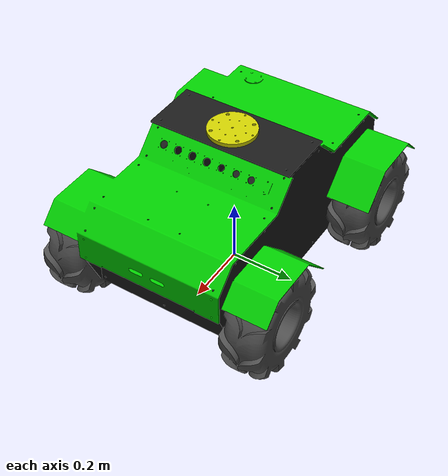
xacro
<?xml version="1.0"?>
<robot name="sleo" xmlns:xacro="http://ros.org/wiki/xacro">

  <xacro:arg name="velodyne_enable" default="false" />
  <xacro:arg name="ur5_enable" default="false" />
  <xacro:arg name="3d_sensor_enable" default="false" />
  <xacro:arg name="laser_enable" default="false" />
  <xacro:include filename="$(find sleo_description)/urdf/sleo_library.urdf.xacro" />

  <sleo/>

  <xacro:if value="$(arg laser_enable)">
    <sick_lms1xx                    parent="base_link"/>
  </xacro:if>

  <xacro:if value="$(arg 3d_sensor_enable)">
    <sensor_d415                    parent="base_link"/>
  </xacro:if>

  <xacro:if value="$(arg velodyne_enable)">
    <xacro:unless value="$(arg ur5_enable)">
      <HDL-32E parent="base_link" name="velodyne2" topic="/velodyne_points" hz="10" samples="220">
        <origin xyz="0.0 0.0 0.403" rpy="0.0 0.0 0.0" />
      </HDL-32E>
    </xacro:unless>
  </xacro:if>

  <xacro:if value="$(arg ur5_enable)">
    <xacro:unless value="$(arg velodyne_enable)">
      <xacro:property name="reflect" value="-1" />

      <!-- Spawn arm -->
      <xacro:ur5_robot prefix="ur5_arm_" joint_limited="true"/>

      <!-- Join arm -->
      <joint name="ur5_arm_base" type="fixed">
        <parent link="base_link" />
        <child link="ur5_arm_base_link" />
        <origin xyz="0.0 0.0 0.403" rpy="0.0 0.0 0.0" />
      </joint>
    </xacro:unless>
  </xacro:if>

</robot>

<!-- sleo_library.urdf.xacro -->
<!--
  The complete sleo library of xacros for easy reference
 -->
<robot xmlns:xacro="http://ros.org/wiki/xacro">
  <!-- General -->
  <xacro:include filename="$(find sleo_description)/urdf/common_properties.urdf.xacro"/>
  <xacro:include filename="$(find sleo_description)/urdf/sleo_properties.urdf.xacro"/>
  <!-- Bases -->
  <xacro:include filename="$(find sleo_description)/urdf/sleo.urdf.xacro" />
  <!-- 2D Laser -->
  <xacro:include filename="$(find sleo_description)/urdf/sensors/sick_lmsxx.urdf.xacro"/>

  <!-- 3D sensor -->
  <xacro:include filename="$(find sleo_description)/urdf/sensors/velodyne.urdf.xacro"/>
  <xacro:include filename="$(find velodyne_description)/urdf/HDL-32E.urdf.xacro"/>
  <xacro:include filename="$(find sleo_description)/urdf/sensors/d415.urdf.xacro"/>

  <!-- Arm -->
  <xacro:include filename="$(find ur_description)/urdf/ur5.urdf.xacro" />

</robot>

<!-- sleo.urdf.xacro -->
<robot name="sleo" xmlns:xacro="http://ros.org/wiki/xacro">
  <xacro:include filename="$(find sleo_description)/urdf/wheel.urdf.xacro" />
  <xacro:include filename="$(find sleo_description)/urdf/common_properties.urdf.xacro"/>
  <xacro:include filename="$(find sleo_description)/urdf/sleo_gazebo.urdf.xacro"/>
  <property name="M_PI" value="3.14159"/>

  <!-- Base Size -->
  <property name="base_x_size" value="0.885" />
  <property name="base_y_size" value="0.618" />
  <property name="base_z_size" value="0.391" />

  <!-- Wheel Mounting Positions -->
  <xacro:property name="wheelbase" value="0.590" />
  <xacro:property name="track" value="0.5936" />
  <xacro:property name="wheel_vertical_offset" value="0.0735" />

  <!-- Wheel Properties -->
  <xacro:property name="wheel_length" value="0.127" />
  <xacro:property name="wheel_radius" value="0.1651" />

  <!--Xacro Macro Panther-->
  <xacro:macro name="sleo">

    <!-- Base link is on the ground under the robot -->
    <link name="base_footprint"/>

    <joint name="chassis_joint" type="fixed">
      <origin xyz="0 0 ${wheel_radius - wheel_vertical_offset}" rpy="0 0 0" />
      <parent link="base_footprint" />
      <child link="base_link" />
    </joint>

    <!-- Chassis link is the center of the robot's bottom plate -->
    <link name="base_link">
      <visual>
        <origin xyz="0 0 0" rpy="0 0 0" />
        <geometry>
	      <mesh filename="package://sleo_description/meshes/chassis.stl"/>
        </geometry>
       <xacro:insert_block name="sleo_black" />
      </visual>
      <collision>
        <origin xyz="0 0 0" rpy="0 0 0" />
        <geometry>
	      <mesh filename="package://sleo_description/meshes/chassis.stl"/>
        </geometry>
      </collision>
    </link>
    <gazebo reference="base_link">
    </gazebo>

   <!-- Bonnet link is above of the robot's chassis -->
   <link name="bonnet_link">
      <visual>
        <origin xyz="0 0 0" rpy="0 0 0" />
        <geometry>
	      <mesh filename="package://sleo_description/meshes/bonnet.stl"/>
        </geometry>
       <xacro:insert_block name="sleo_green" />
      </visual>
      <collision>
        <origin xyz="0 0 0" rpy="0 0 0" />
        <geometry>
	      <mesh filename="package://sleo_description/meshes/bonnet.stl"/>
        </geometry>
      </collision>
    </link>
    <joint name="bonnet_joint" type="fixed">
      <origin xyz="0 0 0.1384" rpy="0 0 0" />
      <parent link="base_link" />
      <child link="bonnet_link" />
    </joint>

   <!-- Axle link is scatter arround the chassis -->
   <link name="axle_link">
      <visual>
        <origin xyz="0 0 0" rpy="0 0 0" />
        <geometry>
	      <mesh filename="package://sleo_description/meshes/axle.stl"/>
        </geometry>
       <xacro:insert_block name="sleo_yellow" />
      </visual>
      <collision>
        <origin xyz="0 0 0" rpy="0 0 0" />
        <geometry>
	      <mesh filename="package://sleo_description/meshes/axle.stl"/>
        </geometry>
      </collision>
    </link>
    <joint name="axle_joint" type="fixed">
      <origin xyz="0 0 0.0235" rpy="0 0 0" />
      <parent link="base_link" />
      <child link="axle_link" />
    </joint>

   <!-- Interial link stores the robot's inertial information -->
    <link name="inertial_link">
      <inertial>
        <mass value="59.488"/>
        <origin xyz="0.0 0.0 0" />
        <inertia ixx="2.562164852" ixy="-0.003417247" ixz="0.040864606" iyy="2.562164852" iyz="0.000869143" izz="5.621439416"/>
      </inertial>
    </link>

    <joint name="inertial_joint" type="fixed">
      <origin xyz="0.00035 0.00057 0.0000014" rpy="0 0 0" />
      <parent link="base_link" />
      <child link="inertial_link" />
    </joint>

    <!-- IMU Link is the standard mounting position for the UM6 IMU.-->
    <!-- Can be modified with environment variables in /etc/ros/setup.bash -->
    <link name="imu_link"/>

    <joint name="imu_joint" type="fixed">
      <origin xyz="0.21659 0 0.046" rpy="-3.1415926 0 0" />
      <parent link="base_link" />
      <child link="imu_link" />
    </joint>
    <gazebo reference="imu_link"/>

    <!-- sleo wheel macros-->
    <xacro:sleo_wheel wheel_prefix="front_left">
      <origin xyz="${wheelbase/2} ${track/2} ${wheel_vertical_offset}" rpy="0 0 0" />
    </xacro:sleo_wheel>
    <xacro:sleo_wheel wheel_prefix="front_right">
      <origin xyz="${wheelbase/2} ${-track/2} ${wheel_vertical_offset}" rpy="0 0 0" />
    </xacro:sleo_wheel>
    <xacro:sleo_wheel wheel_prefix="rear_left">
      <origin xyz="${-wheelbase/2} ${track/2} ${wheel_vertical_offset}" rpy="0 0 0" />
    </xacro:sleo_wheel>
    <xacro:sleo_wheel wheel_prefix="rear_right">
      <origin xyz="${-wheelbase/2} ${-track/2} ${wheel_vertical_offset}" rpy="0 0 0" />
    </xacro:sleo_wheel>

    <!-- sleo Gazebo simulation details -->
    <sleo_robot_gazebo/>
    <gazebo_material link="base_link" color="Black"/>
    <gazebo_material link="bonnet_link" color="Green"/>
    <gazebo_material link="axle_link" color="Yellow"/>

  </xacro:macro>

</robot>

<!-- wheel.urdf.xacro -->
<robot xmlns:xacro="http://ros.org/wiki/xacro" name="sleo_wheel">
  <xacro:include filename="$(find sleo_description)/urdf/sleo_gazebo.urdf.xacro"/>

    <xacro:macro name="sleo_wheel" params="wheel_prefix *joint_pose">
        <link name="${wheel_prefix}_wheel_link">
            <inertial>
                <mass value="7.396" />
                <origin xyz="0 0 0" />
                <inertia  ixx="0.058573348" ixy="0" ixz="0" iyy="0.099098928" iyz="0" izz="0.058573348" />
            </inertial>
            <visual>
                <origin xyz="0 0 0" rpy="0 0 0" />
                <geometry>
                    <mesh filename="package://sleo_description/meshes/wheel.stl" />
                </geometry>
                <xacro:insert_block name="sleo_dark_grey" />
            </visual>
            <collision>
                <origin xyz="0 0 0" rpy="${M_PI/2} 0 0" />
                <geometry>
                    <cylinder length="${wheel_length}" radius="${wheel_radius}" />
                </geometry>
            </collision>
        </link>

        <gazebo reference="${wheel_prefix}_wheel_link">
            <mu1 value="1.0"/>
            <mu2 value="1.0"/>
            <kp value="10000000.0" />
            <kd value="1.0" />
            <fdir1 value="1 0 0"/>
        </gazebo>

        <joint name="${wheel_prefix}_wheel" type="continuous">
            <parent link="base_link"/>
            <child link="${wheel_prefix}_wheel_link"/>
            <xacro:insert_block name="joint_pose"/>
            <axis xyz="0 1 0" rpy="0 0 0" />
        </joint>

        <transmission name="${wheel_prefix}_wheel_trans" type="SimpleTransmission">
            <type>transmission_interface/SimpleTransmission</type>
            <actuator name="${wheel_prefix}_wheel_motor">
              <mechanicalReduction>1</mechanicalReduction>
            </actuator>
            <joint name="${wheel_prefix}_wheel">
              <hardwareInterface>VelocityJointInterface</hardwareInterface>
            </joint>
        </transmission>

        <gazebo_material link="${wheel_prefix}_wheel_link" color="Black"/>
    </xacro:macro>
</robot>

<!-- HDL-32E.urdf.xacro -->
<robot xmlns:xacro="http://www.ros.org/wiki/xacro" name="HDL-32E">
  <xacro:property name="M_PI" value="3.1415926535897931" />
  <xacro:macro name="HDL-32E" params="*origin parent:=base_link name:=velodyne tf_prefix:='' topic:=/velodyne_points organize_cloud:=false hz:=10 lasers:=32 samples:=2187 collision_range:=0.3 min_range:=0.9 max_range:=130.0 noise:=0.008 min_angle:=-${M_PI} max_angle:=${M_PI} gpu:=false">

    <joint name="${name}_base_mount_joint" type="fixed">
      <xacro:insert_block name="origin" />
      <parent link="${parent}"/>
      <child link="${name}_base_link"/>
    </joint>

    <link name="${name}_base_link">
      <inertial>
        <mass value="1.0"/>
        <origin xyz="0 0 0.07212"/>
        <inertia ixx="${(1.0 * (3.0*0.04267*0.04267 + 0.14424*0.14424)) / 12.0}" ixy="0" ixz="0"
          iyy="${(1.0 * (3.0*0.04267*0.04267 + 0.14424*0.14424)) / 12.0}" iyz="0"
          izz="${0.5 * 1.0 * (0.04267*0.04267)}"/>
      </inertial>
      <visual>
        <geometry>
          <mesh filename="package://velodyne_description/meshes/HDL32E_base.dae" />
        </geometry>
      </visual>
      <collision>
        <origin rpy="0 0 0" xyz="0 0 0.07212"/>
        <geometry>
          <cylinder radius="0.04267" length="0.14424"/>
        </geometry>
      </collision>
    </link>

    <joint name="${name}_base_scan_joint" type="fixed" >
      <origin xyz="0 0 0.09081" rpy="0 0 0" />
      <parent link="${name}_base_link" />
      <child link="${name}"/>
    </joint>

    <link name="${name}">
      <inertial>
        <mass value="0.01"/>
        <origin xyz="0 0 0"/>
        <inertia ixx="1e-7" ixy="0" ixz="0" iyy="1e-7" iyz="0" izz="1e-7"/>
      </inertial>
      <visual>
        <origin xyz="0 0 -0.09081" rpy="0 0 0" />
        <geometry>
          <mesh filename="package://velodyne_description/meshes/HDL32E_scan.dae" />
        </geometry>
      </visual>
      <collision>
        <geometry>
          <sphere radius="0"/>
        </geometry>
      </collision>
    </link>

    <!-- Gazebo requires the velodyne_gazebo_plugins package -->
    <gazebo reference="${name}">
      <xacro:if value="${gpu}">
        <sensor type="gpu_ray" name="${name}-HDL32E">
          <pose>0 0 0 0 0 0</pose>
          <visualize>false</visualize>
          <update_rate>${hz}</update_rate>
          <ray>
            <scan>
              <horizontal>
                <samples>${samples}</samples>
                <resolution>1</resolution>
                <min_angle>${min_angle}</min_angle>
                <max_angle>${max_angle}</max_angle>
              </horizontal>
              <vertical>
                <samples>${lasers}</samples>
                <resolution>1</resolution>
                <min_angle>-${5.0*M_PI/180.0}</min_angle>
                <max_angle> ${85.0*M_PI/180.0}</max_angle>
              </vertical>
            </scan>
            <range>
              <min>${collision_range}</min>
              <max>${max_range+1}</max>
              <resolution>0.001</resolution>
            </range>
            <noise>
              <type>gaussian</type>
              <mean>0.0</mean>
              <stddev>0.0</stddev>
            </noise>
          </ray>
          <plugin name="gazebo_ros_laser_controller" filename="libgazebo_ros_velodyne_laser.so">
            <ros>
              <namespace>/${name}</namespace>
              <remapping>~/out:=${topic}</remapping>
            </ros>
            <tf_prefix>${tf_prefix}</tf_prefix>
            <frame_name>${name}</frame_name>
            <organize_cloud>${organize_cloud}</organize_cloud>
            <min_range>${min_range}</min_range>
            <max_range>${max_range}</max_range>
            <gaussian_noise>${noise}</gaussian_noise>
          </plugin>
        </sensor>
      </xacro:if>
      <xacro:unless value="${gpu}">
        <sensor type="ray" name="${name}-HDL32E">
          <pose>0 0 0 0 0 0</pose>
          <visualize>false</visualize>
          <update_rate>${hz}</update_rate>
          <ray>
            <scan>
              <horizontal>
                <samples>${samples}</samples>
                <resolution>1</resolution>
                <min_angle>${min_angle}</min_angle>
                <max_angle>${max_angle}</max_angle>
              </horizontal>
              <vertical>
                <samples>${lasers}</samples>
                <resolution>1</resolution>
                <min_angle>-${5.0*M_PI/180.0}</min_angle>
                <max_angle> ${85.0*M_PI/180.0}</max_angle>
              </vertical>
            </scan>
            <range>
              <min>${collision_range}</min>
              <max>${max_range+1}</max>
              <resolution>0.001</resolution>
            </range>
            <noise>
              <type>gaussian</type>
              <mean>0.0</mean>
              <stddev>0.0</stddev>
            </noise>
          </ray>
          <plugin name="gazebo_ros_laser_controller" filename="libgazebo_ros_velodyne_laser.so">
            <ros>
              <namespace>/${name}</namespace>
              <remapping>~/out:=${topic}</remapping>
            </ros>
            <tf_prefix>${tf_prefix}</tf_prefix>
            <frame_name>${name}</frame_name>
            <organize_cloud>${organize_cloud}</organize_cloud>
            <min_range>${min_range}</min_range>
            <max_range>${max_range}</max_range>
            <gaussian_noise>${noise}</gaussian_noise>
          </plugin>
        </sensor>
      </xacro:unless>
    </gazebo>

  </xacro:macro>
</robot>
